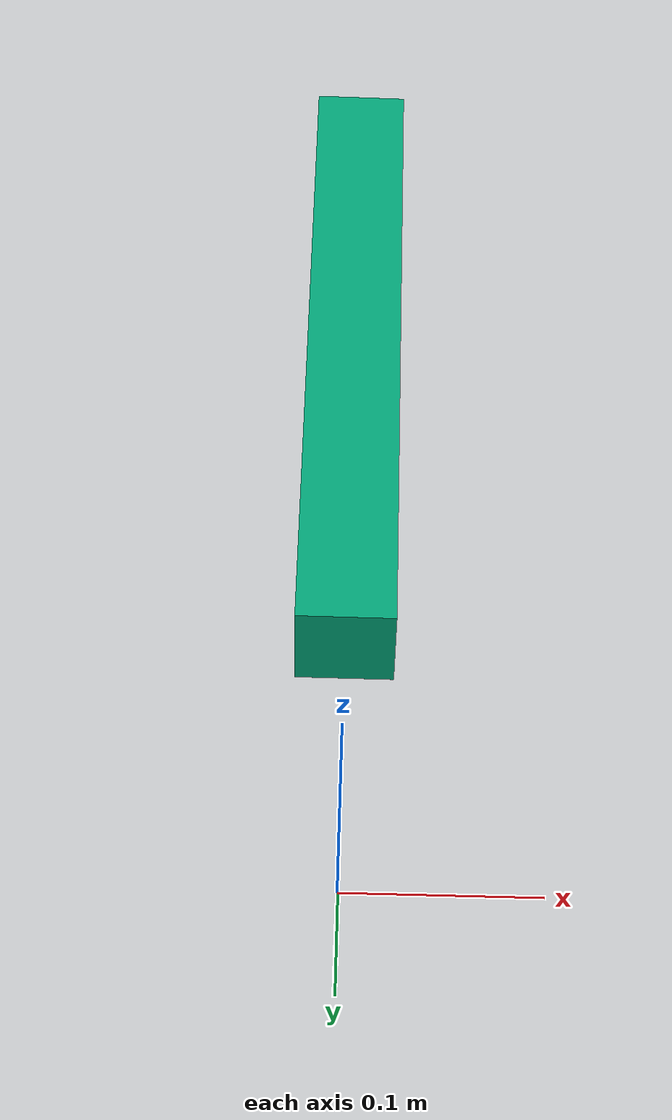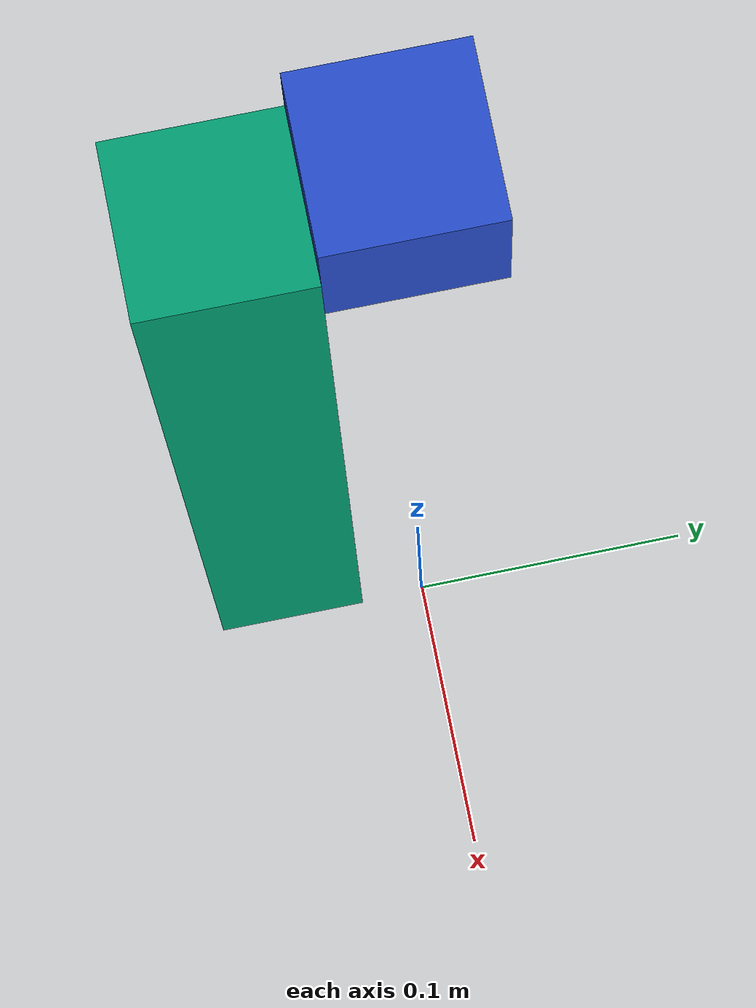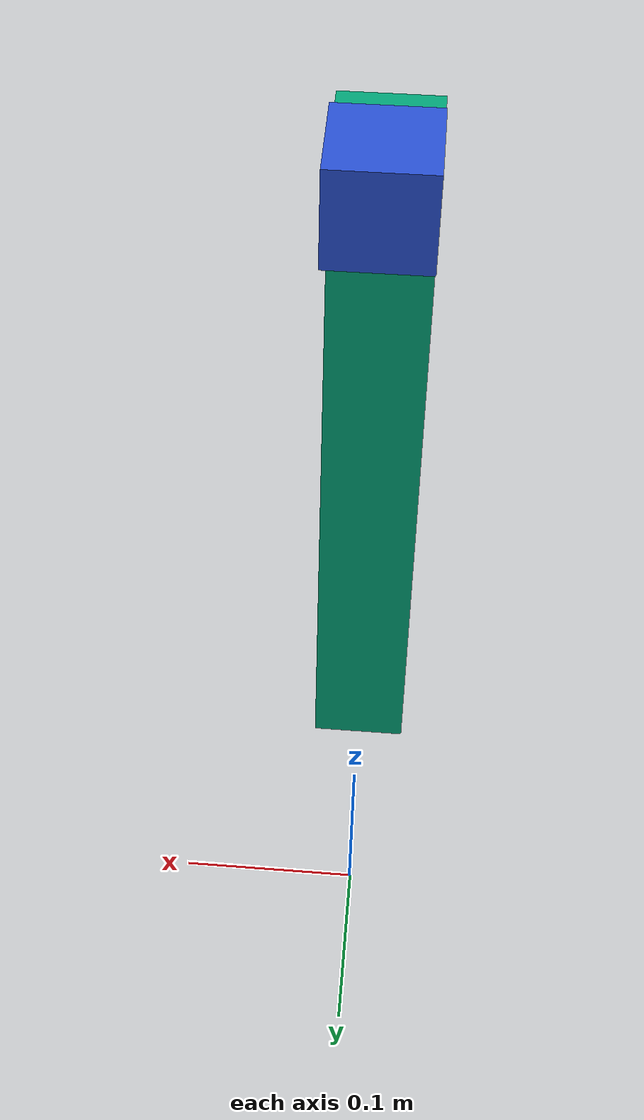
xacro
<?xml version="1.0"?>
<!-- Revolute-Revolute Manipulator -->
<robot name="march" xmlns:xacro="http://www.ros.org/wiki/xacro">
    <!-- An argument that makes sure the march.gazebo is loaded only when launching the simulation and not during build,
            because during build the march_description package can not be found-->
    <xacro:arg name="build" default="false"/>
    <!-- Switch between airgaiting or standing on the ground-->
    <!--Value set to: 'world' fixes the robot to the world-->
    <!--Value set to: 'base_link' makes the robot stand on the ground-->
    <!--Important note: when changing value make sure rviz fixed frame is set to the same value (moveit.rviz)-->

    <!-- Constants for robot dimensions -->
    <xacro:property name="PI" value="3.1415926535897931"/>
    <xacro:property name="joint_base_mass" value="1"/> <!-- arbitrary value for joint_base_mass -->
    <xacro:property name="joint_base_width" value="0.05"/> <!-- Cube dimensions (width x width x width) of joint base -->

    <xacro:property name="bar_length" value="${0.39}"/>
    <xacro:property name="bar_mass" value="1.080"/>
    <xacro:property name="bar_width" value="0.05"/>

    <xacro:property name="joint_buffer" value="${3*pi/180}"/> <!-- rad -->
    <xacro:property name="joint_lower_limit" value="${-8.5*pi/180}"/> <!-- rad -->
    <xacro:property name="joint_upper_limit" value="${8.5*pi/180}"/> <!-- rad -->
    <xacro:property name="joint_effort_limit" value="10927.0"/>
    <xacro:property name="joint_velocity_limit" value="1.0"/> <!-- rad/s -->

    <xacro:property name="hover_height" value="0.5"/>

    <!-- Import all Gazebo-customization elements, including Gazebo colors -->
    <xacro:unless value="$(arg build)">
        <xacro:include filename="$(find march_description)/urdf/march.gazebo"/>
    </xacro:unless>

    <plugin name="gazebo_ros_control" filename="libgazebo_ros_control.so">
        <robotNamespace>/march</robotNamespace>
    </plugin>

    <!-- Used for fixing robot to Gazebo 'base_link' -->
    <link name="world"/>

    <joint name="joint_base_fixed_parent_joint" type="fixed">
        <parent link="world"/>
        <child link="joint_base"/>
        <origin xyz="0 0 ${hover_height}" rpy="0 0 0"/>
    </joint>

    <joint name="linear_joint" type="revolute">
        <parent link="joint_base"/>
        <child link="bar"/>
        <origin xyz="0 ${-joint_base_width} 0" rpy="0 0 0"/>
        <axis xyz="0 1 0"/>
        <limit velocity="${joint_velocity_limit}" effort="${joint_effort_limit}" lower="${joint_lower_limit}" upper="${joint_upper_limit}"/>
        <safety_controller soft_lower_limit="${joint_lower_limit + joint_buffer}" soft_upper_limit="${joint_upper_limit - joint_buffer}" k_position="10" k_velocity="10" />
    </joint>

    <!-- give colors to some links in gazebo -->
    <gazebo reference="joint_base">
        <material>Gazebo/Blue</material>
    </gazebo>

    <!-- Joint Base-->
    <link name="joint_base">
        <visual>
            <origin xyz="0 0 0" rpy="0 0 0"/>
            <geometry>
                <box size="${joint_base_width} ${joint_base_width} ${joint_base_width}"/>
            </geometry>
        </visual>

        <inertial>
            <origin xyz="0 0 0" rpy="0 0 0"/>
            <mass value="${joint_base_mass}"/>
            <inertia
                    ixx="${joint_base_mass / 12.0 * (2*(joint_base_width*joint_base_width))}" ixy="0.0" ixz="0.0"
                    iyy="${joint_base_mass / 12.0 * (2*(joint_base_width*joint_base_width))}" iyz="0.0"
                    izz="${joint_base_mass / 12.0 * (2*(joint_base_width*joint_base_width))}"/>
            <!--(joint_base_width*joint_base_width + joint_base_width*joint_base_width)-->
        </inertial>
    </link>

    <!-- Bar-->
    <link name="bar">
        <visual>
            <origin xyz="0 0 ${-bar_length/2}" rpy="0 0 0"/>
            <geometry>
                <box size="${bar_width} ${bar_width} ${bar_length}"/>
            </geometry>
        </visual>

        <inertial>
            <origin xyz="0 0 ${-bar_length/2}" rpy="0 0 0"/>
            <mass value="${bar_mass}"/>
            <inertia
                    ixx="${joint_base_mass / 12.0 * (bar_width*bar_width + bar_length*bar_length)}" ixy="0.0" ixz="0.0"
                    iyy="${joint_base_mass / 12.0 * (bar_length*bar_length + bar_width*bar_width)}" iyz="0.0"
                    izz="${joint_base_mass / 12.0 * (bar_width*bar_width + bar_width*bar_width)}"/>
        </inertial>
    </link>

    <!-- ROS Control plugin for Gazebo -->
    <transmission name="linear_joint_transmission">
        <type>transmission_interface/SimpleTransmission</type>
        <joint name="linear_joint">
            <hardwareInterface>hardware_interface/EffortJointInterface</hardwareInterface>
        </joint>
        <actuator name="linear_joint_motor">
            <hardwareInterface>hardware_interface/EffortJointInterface</hardwareInterface>
            <mechanicalReduction>1</mechanicalReduction>
        </actuator>
    </transmission>

</robot>
